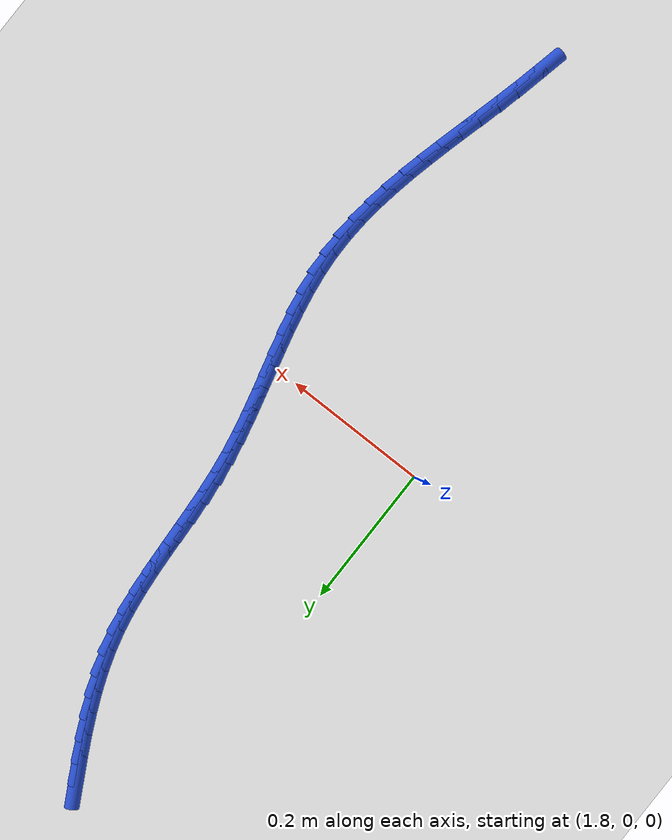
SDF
<sdf version="1.6">
 <world name="default">
  <model name="ground_plane">
   <static>1</static>
   <link name="link">
    <collision name="collision">
     <geometry><plane><normal>0 0 1</normal><size>100 100</size></plane></geometry>
     <surface><friction><ode><mu>100</mu><mu2>50</mu2></ode></friction></surface>
    </collision>
    <visual name="visual">
     <cast_shadows>0</cast_shadows>
     <geometry><plane><normal>0 0 1</normal><size>100 100</size></plane></geometry>
     <material>
      <script><uri>file://media/materials/scripts/gazebo.material</uri><name>Gazebo/WhiteGlow</name></script>
     </material>
    </visual>
   </link>
  </model>
  <model name="line">
   <link name="link_94">
    <pose>1.903670354861648 0.5854387488442686 0.01 0 1.57 -1.069599987651366</pose>
    <collision name="collision">
     <geometry><cylinder><radius>0.01</radius><length>0.08</length></cylinder></geometry>
    </collision>
    <visual name="visual">
     <material>
      <script><name>Gazebo/Blue</name><uri>file://media/materials/scripts/gazebo.material</uri></script>
     </material>
     <geometry><cylinder><radius>0.01</radius><length>0.08</length></cylinder></geometry>
    </visual>
   </link>
   <link name="link_95">
    <pose>1.918064090461425 0.5591659467761437 0.01 0 1.57 -1.0899223483353873</pose>
    <collision name="collision">
     <geometry><cylinder><radius>0.01</radius><length>0.08</length></cylinder></geometry>
    </collision>
    <visual name="visual">
     <material>
      <script><name>Gazebo/Blue</name><uri>file://media/materials/scripts/gazebo.material</uri></script>
     </material>
     <geometry><cylinder><radius>0.01</radius><length>0.08</length></cylinder></geometry>
    </visual>
   </link>
   <link name="link_96">
    <pose>1.9317968679353275 0.532843936201893 0.01 0 1.57 -1.1185885968606646</pose>
    <collision name="collision">
     <geometry><cylinder><radius>0.01</radius><length>0.08</length></cylinder></geometry>
    </collision>
    <visual name="visual">
     <material>
      <script><name>Gazebo/Blue</name><uri>file://media/materials/scripts/gazebo.material</uri></script>
     </material>
     <geometry><cylinder><radius>0.01</radius><length>0.08</length></cylinder></geometry>
    </visual>
   </link>
   <link name="link_97">
    <pose>1.9446548212640176 0.5063753074527502 0.01 0 1.57 -1.155797332273873</pose>
    <collision name="collision">
     <geometry><cylinder><radius>0.01</radius><length>0.08</length></cylinder></geometry>
    </collision>
    <visual name="visual">
     <material>
      <script><name>Gazebo/Blue</name><uri>file://media/materials/scripts/gazebo.material</uri></script>
     </material>
     <geometry><cylinder><radius>0.01</radius><length>0.08</length></cylinder></geometry>
    </visual>
   </link>
   <link name="link_98">
    <pose>1.9564240844281535 0.4796626508599476 0.01 0 1.57 -1.201650595202365</pose>
    <collision name="collision">
     <geometry><cylinder><radius>0.01</radius><length>0.08</length></cylinder></geometry>
    </collision>
    <visual name="visual">
     <material>
      <script><name>Gazebo/Blue</name><uri>file://media/materials/scripts/gazebo.material</uri></script>
     </material>
     <geometry><cylinder><radius>0.01</radius><length>0.08</length></cylinder></geometry>
    </visual>
   </link>
   <link name="link_99">
    <pose>1.9668907914083973 0.4526085567547182 0.01 0 1.57 -1.256068441758974</pose>
    <collision name="collision">
     <geometry><cylinder><radius>0.01</radius><length>0.08</length></cylinder></geometry>
    </collision>
    <visual name="visual">
     <material>
      <script><name>Gazebo/Blue</name><uri>file://media/materials/scripts/gazebo.material</uri></script>
     </material>
     <geometry><cylinder><radius>0.01</radius><length>0.08</length></cylinder></geometry>
    </visual>
   </link>
   <link name="link_100">
    <pose>1.9758410761854084 0.42511561546829546 0.01 0 1.57 -1.3186827218995845</pose>
    <collision name="collision">
     <geometry><cylinder><radius>0.01</radius><length>0.08</length></cylinder></geometry>
    </collision>
    <visual name="visual">
     <material>
      <script><name>Gazebo/Blue</name><uri>file://media/materials/scripts/gazebo.material</uri></script>
     </material>
     <geometry><cylinder><radius>0.01</radius><length>0.08</length></cylinder></geometry>
    </visual>
   </link>
   <link name="link_101">
    <pose>1.9830612316693585 0.39708646869058767 0.01 0 1.57 -1.3838084678422575</pose>
    <collision name="collision">
     <geometry><cylinder><radius>0.01</radius><length>0.08</length></cylinder></geometry>
    </collision>
    <visual name="visual">
     <material>
      <script><name>Gazebo/Blue</name><uri>file://media/materials/scripts/gazebo.material</uri></script>
     </material>
     <geometry><cylinder><radius>0.01</radius><length>0.08</length></cylinder></geometry>
    </visual>
   </link>
   <link name="link_102">
    <pose>1.9884757143107052 0.3684684061851651 0.01 0 1.57 -1.436907106151443</pose>
    <collision name="collision">
     <geometry><cylinder><radius>0.01</radius><length>0.08</length></cylinder></geometry>
    </collision>
    <visual name="visual">
     <material>
      <script><name>Gazebo/Blue</name><uri>file://media/materials/scripts/gazebo.material</uri></script>
     </material>
     <geometry><cylinder><radius>0.01</radius><length>0.08</length></cylinder></geometry>
    </visual>
   </link>
   <link name="link_103">
    <pose>1.9923998365366455 0.33933502431141743 0.01 0 1.57 -1.4757392558695503</pose>
    <collision name="collision">
     <geometry><cylinder><radius>0.01</radius><length>0.08</length></cylinder></geometry>
    </collision>
    <visual name="visual">
     <material>
      <script><name>Gazebo/Blue</name><uri>file://media/materials/scripts/gazebo.material</uri></script>
     </material>
     <geometry><cylinder><radius>0.01</radius><length>0.08</length></cylinder></geometry>
    </visual>
   </link>
   <link name="link_104">
    <pose>1.9952175430344021 0.3097820982046616 0.01 0 1.57 -1.5007815323720515</pose>
    <collision name="collision">
     <geometry><cylinder><radius>0.01</radius><length>0.08</length></cylinder></geometry>
    </collision>
    <visual name="visual">
     <material>
      <script><name>Gazebo/Blue</name><uri>file://media/materials/scripts/gazebo.material</uri></script>
     </material>
     <geometry><cylinder><radius>0.01</radius><length>0.08</length></cylinder></geometry>
    </visual>
   </link>
   <link name="link_105">
    <pose>1.9973127784911977 0.27990540300021327 0.01 0 1.57 -1.512509086998618</pose>
    <collision name="collision">
     <geometry><cylinder><radius>0.01</radius><length>0.08</length></cylinder></geometry>
    </collision>
    <visual name="visual">
     <material>
      <script><name>Gazebo/Blue</name><uri>file://media/materials/scripts/gazebo.material</uri></script>
     </material>
     <geometry><cylinder><radius>0.01</radius><length>0.08</length></cylinder></geometry>
    </visual>
   </link>
   <link name="link_106">
    <pose>1.999069487594255 0.24980071383338917 0.01 0 1.57 -1.5112664919325782</pose>
    <collision name="collision">
     <geometry><cylinder><radius>0.01</radius><length>0.08</length></cylinder></geometry>
    </collision>
    <visual name="visual">
     <material>
      <script><name>Gazebo/Blue</name><uri>file://media/materials/scripts/gazebo.material</uri></script>
     </material>
     <geometry><cylinder><radius>0.01</radius><length>0.08</length></cylinder></geometry>
    </visual>
   </link>
   <link name="link_107">
    <pose>2.0008716150307966 0.21956380583950533 0.01 0 1.57 -1.4972180159920543</pose>
    <collision name="collision">
     <geometry><cylinder><radius>0.01</radius><length>0.08</length></cylinder></geometry>
    </collision>
    <visual name="visual">
     <material>
      <script><name>Gazebo/Blue</name><uri>file://media/materials/scripts/gazebo.material</uri></script>
     </material>
     <geometry><cylinder><radius>0.01</radius><length>0.08</length></cylinder></geometry>
    </visual>
   </link>
   <link name="link_108">
    <pose>2.003103105488047 0.1892904541538776 0.01 0 1.57 -1.4703610528660778</pose>
    <collision name="collision">
     <geometry><cylinder><radius>0.01</radius><length>0.08</length></cylinder></geometry>
    </collision>
    <visual name="visual">
     <material>
      <script><name>Gazebo/Blue</name><uri>file://media/materials/scripts/gazebo.material</uri></script>
     </material>
     <geometry><cylinder><radius>0.01</radius><length>0.08</length></cylinder></geometry>
    </visual>
   </link>
   <link name="link_109">
    <pose>2.006147903653226 0.1590764339118228 0.01 0 1.57 -1.4307035237582355</pose>
    <collision name="collision">
     <geometry><cylinder><radius>0.01</radius><length>0.08</length></cylinder></geometry>
    </collision>
    <visual name="visual">
     <material>
      <script><name>Gazebo/Blue</name><uri>file://media/materials/scripts/gazebo.material</uri></script>
     </material>
     <geometry><cylinder><radius>0.01</radius><length>0.08</length></cylinder></geometry>
    </visual>
   </link>
   <link name="link_110">
    <pose>2.0103867813471323 0.1290169981437815 0.01 0 1.57 -1.3866342188746374</pose>
    <collision name="collision">
     <geometry><cylinder><radius>0.01</radius><length>0.08</length></cylinder></geometry>
    </collision>
    <visual name="visual">
     <material>
      <script><name>Gazebo/Blue</name><uri>file://media/materials/scripts/gazebo.material</uri></script>
     </material>
     <geometry><cylinder><radius>0.01</radius><length>0.08</length></cylinder></geometry>
    </visual>
   </link>
   <link name="link_111">
    <pose>2.0159472594908876 0.09916572667005782 0.01 0 1.57 -1.3526235363668107</pose>
    <collision name="collision">
     <geometry><cylinder><radius>0.01</radius><length>0.08</length></cylinder></geometry>
    </collision>
    <visual name="visual">
     <material>
      <script><name>Gazebo/Blue</name><uri>file://media/materials/scripts/gazebo.material</uri></script>
     </material>
     <geometry><cylinder><radius>0.01</radius><length>0.08</length></cylinder></geometry>
    </visual>
   </link>
   <link name="link_112">
    <pose>2.0225231289214314 0.06950482769898912 0.01 0 1.57 -1.3300135608831583</pose>
    <collision name="collision">
     <geometry><cylinder><radius>0.01</radius><length>0.08</length></cylinder></geometry>
    </collision>
    <visual name="visual">
     <material>
      <script><name>Gazebo/Blue</name><uri>file://media/materials/scripts/gazebo.material</uri></script>
     </material>
     <geometry><cylinder><radius>0.01</radius><length>0.08</length></cylinder></geometry>
    </visual>
   </link>
   <link name="link_113">
    <pose>2.0297656027694173 0.04000950314711626 0.01 0 1.57 -1.3187236226396977</pose>
    <collision name="collision">
     <geometry><cylinder><radius>0.01</radius><length>0.08</length></cylinder></geometry>
    </collision>
    <visual name="visual">
     <material>
      <script><name>Gazebo/Blue</name><uri>file://media/materials/scripts/gazebo.material</uri></script>
     </material>
     <geometry><cylinder><radius>0.01</radius><length>0.08</length></cylinder></geometry>
    </visual>
   </link>
   <link name="link_114">
    <pose>2.0373258941654977 0.010654954930978552 0.01 0 1.57 -1.3187588725720236</pose>
    <collision name="collision">
     <geometry><cylinder><radius>0.01</radius><length>0.08</length></cylinder></geometry>
    </collision>
    <visual name="visual">
     <material>
      <script><name>Gazebo/Blue</name><uri>file://media/materials/scripts/gazebo.material</uri></script>
     </material>
     <geometry><cylinder><radius>0.01</radius><length>0.08</length></cylinder></geometry>
    </visual>
   </link>
   <link name="link_115">
    <pose>2.0448552162403253 -0.018583615032883125 0.01 0 1.57 -1.3302554084240903</pose>
    <collision name="collision">
     <geometry><cylinder><radius>0.01</radius><length>0.08</length></cylinder></geometry>
    </collision>
    <visual name="visual">
     <material>
      <script><name>Gazebo/Blue</name><uri>file://media/materials/scripts/gazebo.material</uri></script>
     </material>
     <geometry><cylinder><radius>0.01</radius><length>0.08</length></cylinder></geometry>
    </visual>
   </link>
   <link name="link_116">
    <pose>2.0520047821245537 -0.047731004827929066 0.01 0 1.57 -1.3534851704017876</pose>
    <collision name="collision">
     <geometry><cylinder><radius>0.01</radius><length>0.08</length></cylinder></geometry>
    </collision>
    <visual name="visual">
     <material>
      <script><name>Gazebo/Blue</name><uri>file://media/materials/scripts/gazebo.material</uri></script>
     </material>
     <geometry><cylinder><radius>0.01</radius><length>0.08</length></cylinder></geometry>
    </visual>
   </link>
   <link name="link_117">
    <pose>2.058425804948836 -0.0768120125376199 0.01 0 1.57 -1.3888170207884576</pose>
    <collision name="collision">
     <geometry><cylinder><radius>0.01</radius><length>0.08</length></cylinder></geometry>
    </collision>
    <visual name="visual">
     <material>
      <script><name>Gazebo/Blue</name><uri>file://media/materials/scripts/gazebo.material</uri></script>
     </material>
     <geometry><cylinder><radius>0.01</radius><length>0.08</length></cylinder></geometry>
    </visual>
   </link>
   <link name="link_118">
    <pose>2.063769497843825 -0.10585143624541409 0.01 0 1.57 -1.436623841843454</pose>
    <collision name="collision">
     <geometry><cylinder><radius>0.01</radius><length>0.08</length></cylinder></geometry>
    </collision>
    <visual name="visual">
     <material>
      <script><name>Gazebo/Blue</name><uri>file://media/materials/scripts/gazebo.material</uri></script>
     </material>
     <geometry><cylinder><radius>0.01</radius><length>0.08</length></cylinder></geometry>
    </visual>
   </link>
   <link name="link_119">
    <pose>2.0676870739401734 -0.1348740740347723 0.01 0 1.57 -1.4971203550279457</pose>
    <collision name="collision">
     <geometry><cylinder><radius>0.01</radius><length>0.08</length></cylinder></geometry>
    </collision>
    <visual name="visual">
     <material>
      <script><name>Gazebo/Blue</name><uri>file://media/materials/scripts/gazebo.material</uri></script>
     </material>
     <geometry><cylinder><radius>0.01</radius><length>0.08</length></cylinder></geometry>
    </visual>
   </link>
   <link name="link_120">
    <pose>2.0698298135965363 -0.16390472221974528 0.01 0 1.57 -1.5657963880837844</pose>
    <collision name="collision">
     <geometry><cylinder><radius>0.01</radius><length>0.08</length></cylinder></geometry>
    </collision>
    <visual name="visual">
     <material>
      <script><name>Gazebo/Blue</name><uri>file://media/materials/scripts/gazebo.material</uri></script>
     </material>
     <geometry><cylinder><radius>0.01</radius><length>0.08</length></cylinder></geometry>
    </visual>
   </link>
   <link name="link_121">
    <pose>2.069975113704116 -0.19296485778701317 0.01 0 1.57 1.5128982570870542</pose>
    <collision name="collision">
     <geometry><cylinder><radius>0.01</radius><length>0.08</length></cylinder></geometry>
    </collision>
    <visual name="visual">
     <material>
      <script><name>Gazebo/Blue</name><uri>file://media/materials/scripts/gazebo.material</uri></script>
     </material>
     <geometry><cylinder><radius>0.01</radius><length>0.08</length></cylinder></geometry>
    </visual>
   </link>
   <link name="link_122">
    <pose>2.0682883432107686 -0.222065746482584 0.01 0 1.57 1.4587799646502855</pose>
    <collision name="collision">
     <geometry><cylinder><radius>0.01</radius><length>0.08</length></cylinder></geometry>
    </collision>
    <visual name="visual">
     <material>
      <script><name>Gazebo/Blue</name><uri>file://media/materials/scripts/gazebo.material</uri></script>
     </material>
     <geometry><cylinder><radius>0.01</radius><length>0.08</length></cylinder></geometry>
    </visual>
   </link>
   <link name="link_123">
    <pose>2.065009233250044 -0.25121669687497594 0.01 0 1.57 1.4135410989798258</pose>
    <collision name="collision">
     <geometry><cylinder><radius>0.01</radius><length>0.08</length></cylinder></geometry>
    </collision>
    <visual name="visual">
     <material>
      <script><name>Gazebo/Blue</name><uri>file://media/materials/scripts/gazebo.material</uri></script>
     </material>
     <geometry><cylinder><radius>0.01</radius><length>0.08</length></cylinder></geometry>
    </visual>
   </link>
   <link name="link_124">
    <pose>2.0603775149554924 -0.28042701753270954 0.01 0 1.57 1.3770554338935368</pose>
    <collision name="collision">
     <geometry><cylinder><radius>0.01</radius><length>0.08</length></cylinder></geometry>
    </collision>
    <visual name="visual">
     <material>
      <script><name>Gazebo/Blue</name><uri>file://media/materials/scripts/gazebo.material</uri></script>
     </material>
     <geometry><cylinder><radius>0.01</radius><length>0.08</length></cylinder></geometry>
    </visual>
   </link>
   <link name="link_125">
    <pose>2.054632919460663 -0.30970601702430434 0.01 0 1.57 1.349079254663688</pose>
    <collision name="collision">
     <geometry><cylinder><radius>0.01</radius><length>0.08</length></cylinder></geometry>
    </collision>
    <visual name="visual">
     <material>
      <script><name>Gazebo/Blue</name><uri>file://media/materials/scripts/gazebo.material</uri></script>
     </material>
     <geometry><cylinder><radius>0.01</radius><length>0.08</length></cylinder></geometry>
    </visual>
   </link>
   <link name="link_126">
    <pose>2.0480151778991056 -0.3390630039182809 0.01 0 1.57 1.329334108473883</pose>
    <collision name="collision">
     <geometry><cylinder><radius>0.01</radius><length>0.08</length></cylinder></geometry>
    </collision>
    <visual name="visual">
     <material>
      <script><name>Gazebo/Blue</name><uri>file://media/materials/scripts/gazebo.material</uri></script>
     </material>
     <geometry><cylinder><radius>0.01</radius><length>0.08</length></cylinder></geometry>
    </visual>
   </link>
   <link name="link_127">
    <pose>2.040764021404371 -0.3685072867831574 0.01 0 1.57 1.3175634431880445</pose>
    <collision name="collision">
     <geometry><cylinder><radius>0.01</radius><length>0.08</length></cylinder></geometry>
    </collision>
    <visual name="visual">
     <material>
      <script><name>Gazebo/Blue</name><uri>file://media/materials/scripts/gazebo.material</uri></script>
     </material>
     <geometry><cylinder><radius>0.01</radius><length>0.08</length></cylinder></geometry>
    </visual>
   </link>
   <link name="link_128">
    <pose>2.033119181110008 -0.3980481741874543 0.01 0 1.57 1.313567145948357</pose>
    <collision name="collision">
     <geometry><cylinder><radius>0.01</radius><length>0.08</length></cylinder></geometry>
    </collision>
    <visual name="visual">
     <material>
      <script><name>Gazebo/Blue</name><uri>file://media/materials/scripts/gazebo.material</uri></script>
     </material>
     <geometry><cylinder><radius>0.01</radius><length>0.08</length></cylinder></geometry>
    </visual>
   </link>
   <link name="link_129">
    <pose>2.025320388149567 -0.4276949746996913 0.01 0 1.57 1.3172187410582066</pose>
    <collision name="collision">
     <geometry><cylinder><radius>0.01</radius><length>0.08</length></cylinder></geometry>
    </collision>
    <visual name="visual">
     <material>
      <script><name>Gazebo/Blue</name><uri>file://media/materials/scripts/gazebo.material</uri></script>
     </material>
     <geometry><cylinder><radius>0.01</radius><length>0.08</length></cylinder></geometry>
    </visual>
   </link>
   <link name="link_130">
    <pose>2.017607373656598 -0.45745699688838815 0.01 0 1.57 1.3284689063136184</pose>
    <collision name="collision">
     <geometry><cylinder><radius>0.01</radius><length>0.08</length></cylinder></geometry>
    </collision>
    <visual name="visual">
     <material>
      <script><name>Gazebo/Blue</name><uri>file://media/materials/scripts/gazebo.material</uri></script>
     </material>
     <geometry><cylinder><radius>0.01</radius><length>0.08</length></cylinder></geometry>
    </visual>
   </link>
   <link name="link_131">
    <pose>2.0102198687646506 -0.48734354932206525 0.01 0 1.57 1.3462852708427038</pose>
    <collision name="collision">
     <geometry><cylinder><radius>0.01</radius><length>0.08</length></cylinder></geometry>
    </collision>
    <visual name="visual">
     <material>
      <script><name>Gazebo/Blue</name><uri>file://media/materials/scripts/gazebo.material</uri></script>
     </material>
     <geometry><cylinder><radius>0.01</radius><length>0.08</length></cylinder></geometry>
    </visual>
   </link>
   <link name="link_132">
    <pose>2.003366653294311 -0.5173540123399796 0.01 0 1.57 1.3581905842163806</pose>
    <collision name="collision">
     <geometry><cylinder><radius>0.01</radius><length>0.08</length></cylinder></geometry>
    </collision>
    <visual name="visual">
     <material>
      <script><name>Gazebo/Blue</name><uri>file://media/materials/scripts/gazebo.material</uri></script>
     </material>
     <geometry><cylinder><radius>0.01</radius><length>0.08</length></cylinder></geometry>
    </visual>
   </link>
  </model>
 </world>
</sdf>
